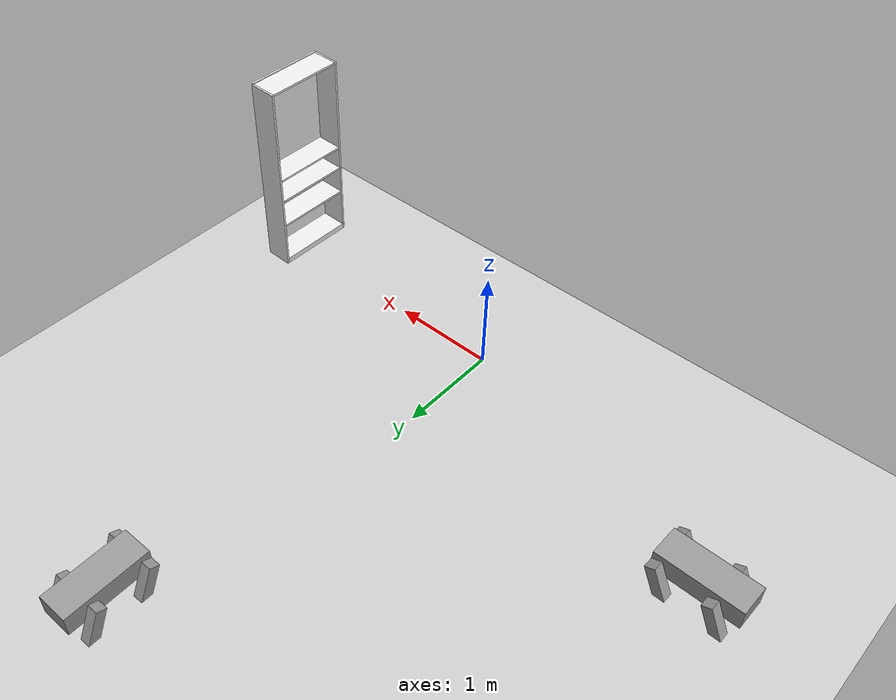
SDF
<sdf version="1.6">
 <world name="default">
  <model name="ground_plane">
   <static>1</static>
   <link name="link">
    <collision name="collision">
     <geometry><plane><normal>0 0 1</normal><size>100 100</size></plane></geometry>
     <surface>
      <contact><collide_bitmask>65535</collide_bitmask></contact>
      <friction><ode><mu>100</mu><mu2>50</mu2></ode></friction>
     </surface>
    </collision>
    <visual name="visual">
     <cast_shadows>0</cast_shadows>
     <geometry><plane><normal>0 0 1</normal><size>100 100</size></plane></geometry>
     <material>
      <script><uri>file://media/materials/scripts/gazebo.material</uri><name>Gazebo/Grey</name></script>
     </material>
    </visual>
   </link>
  </model>
  <model name="Dog">
   <link name="link_3">
    <pose>0 0 0.155724 0 -0 0</pose>
    <inertial>
     <mass>1</mass>
     <inertia>
      <ixx>0.166667</ixx>
      <ixy>0</ixy>
      <ixz>0</ixz>
      <iyy>0.166667</iyy>
      <iyz>0</iyz>
      <izz>0.166667</izz>
     </inertia>
    </inertial>
    <visual name="visual">
     <geometry><box><size>0.3 0.8 0.2</size></box></geometry>
     <material>
      <lighting>1</lighting>
      <script><uri>file://media/materials/scripts/gazebo.material</uri><name>Gazebo/Grey</name></script>
      <shader type="pixel"><normal_map>__default__</normal_map></shader>
      <ambient>0.3 0.3 0.3 1</ambient>
      <diffuse>0.7 0.7 0.7 1</diffuse>
      <specular>0.01 0.01 0.01 1</specular>
      <emissive>0 0 0 1</emissive>
     </material>
    </visual>
    <collision name="collision">
     <geometry><box><size>0.3 0.8 0.2</size></box></geometry>
     <surface>
      <friction>
       <ode><mu>1</mu><mu2>1</mu2><fdir1>0 0 0</fdir1><slip1>0</slip1><slip2>0</slip2></ode>
       <torsional>
        <coefficient>1</coefficient>
        <patch_radius>0</patch_radius>
        <surface_radius>0</surface_radius>
        <use_patch_radius>1</use_patch_radius>
        <ode><slip>0</slip></ode>
       </torsional>
      </friction>
      <bounce><restitution_coefficient>0</restitution_coefficient><threshold>1e+06</threshold></bounce>
      <contact>
       <collide_without_contact>0</collide_without_contact>
       <collide_without_contact_bitmask>1</collide_without_contact_bitmask>
       <collide_bitmask>1</collide_bitmask>
       <ode>
        <soft_cfm>0</soft_cfm>
        <soft_erp>0.2</soft_erp>
        <kp>1e+13</kp>
        <kd>1</kd>
        <max_vel>0.01</max_vel>
        <min_depth>0</min_depth>
       </ode>
       <bullet>
        <split_impulse>1</split_impulse>
        <split_impulse_penetration_threshold>-0.01</split_impulse_penetration_threshold>
        <soft_cfm>0</soft_cfm>
        <soft_erp>0.2</soft_erp>
        <kp>1e+13</kp>
        <kd>1</kd>
       </bullet>
      </contact>
     </surface>
    </collision>
   </link>
   <link name="link_4_clone">
    <pose>-0.2 0.250498 -0.038931 2 -0 0</pose>
    <inertial>
     <mass>1</mass>
     <inertia>
      <ixx>0.166667</ixx>
      <ixy>0</ixy>
      <ixz>0</ixz>
      <iyy>0.166667</iyy>
      <iyz>0</iyz>
      <izz>0.166667</izz>
     </inertia>
    </inertial>
    <visual name="visual">
     <geometry><box><size>0.1 0.5 0.1</size></box></geometry>
     <material>
      <lighting>1</lighting>
      <script><uri>file://media/materials/scripts/gazebo.material</uri><name>Gazebo/Grey</name></script>
      <shader type="pixel"><normal_map>__default__</normal_map></shader>
      <ambient>0.3 0.3 0.3 1</ambient>
      <diffuse>0.7 0.7 0.7 1</diffuse>
      <specular>0.01 0.01 0.01 1</specular>
      <emissive>0 0 0 1</emissive>
     </material>
    </visual>
    <collision name="collision">
     <geometry><box><size>0.1 0.5 0.1</size></box></geometry>
     <surface>
      <friction>
       <ode><mu>1</mu><mu2>1</mu2><fdir1>0 0 0</fdir1><slip1>0</slip1><slip2>0</slip2></ode>
       <torsional>
        <coefficient>1</coefficient>
        <patch_radius>0</patch_radius>
        <surface_radius>0</surface_radius>
        <use_patch_radius>1</use_patch_radius>
        <ode><slip>0</slip></ode>
       </torsional>
      </friction>
      <bounce><restitution_coefficient>0</restitution_coefficient><threshold>1e+06</threshold></bounce>
      <contact>
       <collide_without_contact>0</collide_without_contact>
       <collide_without_contact_bitmask>1</collide_without_contact_bitmask>
       <collide_bitmask>1</collide_bitmask>
       <ode>
        <soft_cfm>0</soft_cfm>
        <soft_erp>0.2</soft_erp>
        <kp>1e+13</kp>
        <kd>1</kd>
        <max_vel>0.01</max_vel>
        <min_depth>0</min_depth>
       </ode>
       <bullet>
        <split_impulse>1</split_impulse>
        <split_impulse_penetration_threshold>-0.01</split_impulse_penetration_threshold>
        <soft_cfm>0</soft_cfm>
        <soft_erp>0.2</soft_erp>
        <kp>1e+13</kp>
        <kd>1</kd>
       </bullet>
      </contact>
     </surface>
    </collision>
   </link>
   <link name="link_4_clone_0">
    <pose>0.2 -0.250498 -0.038931 2 -0 0</pose>
    <inertial>
     <mass>1</mass>
     <inertia>
      <ixx>0.166667</ixx>
      <ixy>0</ixy>
      <ixz>0</ixz>
      <iyy>0.166667</iyy>
      <iyz>0</iyz>
      <izz>0.166667</izz>
     </inertia>
    </inertial>
    <visual name="visual">
     <geometry><box><size>0.1 0.5 0.1</size></box></geometry>
     <material>
      <lighting>1</lighting>
      <script><uri>file://media/materials/scripts/gazebo.material</uri><name>Gazebo/Grey</name></script>
      <shader type="pixel"><normal_map>__default__</normal_map></shader>
      <ambient>0.3 0.3 0.3 1</ambient>
      <diffuse>0.7 0.7 0.7 1</diffuse>
      <specular>0.01 0.01 0.01 1</specular>
      <emissive>0 0 0 1</emissive>
     </material>
    </visual>
    <collision name="collision">
     <geometry><box><size>0.1 0.5 0.1</size></box></geometry>
     <surface>
      <friction>
       <ode><mu>1</mu><mu2>1</mu2><fdir1>0 0 0</fdir1><slip1>0</slip1><slip2>0</slip2></ode>
       <torsional>
        <coefficient>1</coefficient>
        <patch_radius>0</patch_radius>
        <surface_radius>0</surface_radius>
        <use_patch_radius>1</use_patch_radius>
        <ode><slip>0</slip></ode>
       </torsional>
      </friction>
      <bounce><restitution_coefficient>0</restitution_coefficient><threshold>1e+06</threshold></bounce>
      <contact>
       <collide_without_contact>0</collide_without_contact>
       <collide_without_contact_bitmask>1</collide_without_contact_bitmask>
       <collide_bitmask>1</collide_bitmask>
       <ode>
        <soft_cfm>0</soft_cfm>
        <soft_erp>0.2</soft_erp>
        <kp>1e+13</kp>
        <kd>1</kd>
        <max_vel>0.01</max_vel>
        <min_depth>0</min_depth>
       </ode>
       <bullet>
        <split_impulse>1</split_impulse>
        <split_impulse_penetration_threshold>-0.01</split_impulse_penetration_threshold>
        <soft_cfm>0</soft_cfm>
        <soft_erp>0.2</soft_erp>
        <kp>1e+13</kp>
        <kd>1</kd>
       </bullet>
      </contact>
     </surface>
    </collision>
   </link>
   <link name="link_4_clone_1">
    <pose>-0.2 -0.250498 -0.038931 2 -0 0</pose>
    <inertial>
     <mass>1</mass>
     <inertia>
      <ixx>0.166667</ixx>
      <ixy>0</ixy>
      <ixz>0</ixz>
      <iyy>0.166667</iyy>
      <iyz>0</iyz>
      <izz>0.166667</izz>
     </inertia>
    </inertial>
    <visual name="visual">
     <geometry><box><size>0.1 0.5 0.1</size></box></geometry>
     <material>
      <lighting>1</lighting>
      <script><uri>file://media/materials/scripts/gazebo.material</uri><name>Gazebo/Grey</name></script>
      <shader type="pixel"><normal_map>__default__</normal_map></shader>
      <ambient>0.3 0.3 0.3 1</ambient>
      <diffuse>0.7 0.7 0.7 1</diffuse>
      <specular>0.01 0.01 0.01 1</specular>
      <emissive>0 0 0 1</emissive>
     </material>
    </visual>
    <collision name="collision">
     <geometry><box><size>0.1 0.5 0.1</size></box></geometry>
     <surface>
      <friction>
       <ode><mu>1</mu><mu2>1</mu2><fdir1>0 0 0</fdir1><slip1>0</slip1><slip2>0</slip2></ode>
       <torsional>
        <coefficient>1</coefficient>
        <patch_radius>0</patch_radius>
        <surface_radius>0</surface_radius>
        <use_patch_radius>1</use_patch_radius>
        <ode><slip>0</slip></ode>
       </torsional>
      </friction>
      <bounce><restitution_coefficient>0</restitution_coefficient><threshold>1e+06</threshold></bounce>
      <contact>
       <collide_without_contact>0</collide_without_contact>
       <collide_without_contact_bitmask>1</collide_without_contact_bitmask>
       <collide_bitmask>1</collide_bitmask>
       <ode>
        <soft_cfm>0</soft_cfm>
        <soft_erp>0.2</soft_erp>
        <kp>1e+13</kp>
        <kd>1</kd>
        <max_vel>0.01</max_vel>
        <min_depth>0</min_depth>
       </ode>
       <bullet>
        <split_impulse>1</split_impulse>
        <split_impulse_penetration_threshold>-0.01</split_impulse_penetration_threshold>
        <soft_cfm>0</soft_cfm>
        <soft_erp>0.2</soft_erp>
        <kp>1e+13</kp>
        <kd>1</kd>
       </bullet>
      </contact>
     </surface>
    </collision>
   </link>
   <link name="link_4_clone_1_clone">
    <pose>0.2 0.250498 -0.038931 2 -0 0</pose>
    <inertial>
     <mass>1</mass>
     <inertia>
      <ixx>0.166667</ixx>
      <ixy>0</ixy>
      <ixz>0</ixz>
      <iyy>0.166667</iyy>
      <iyz>0</iyz>
      <izz>0.166667</izz>
     </inertia>
    </inertial>
    <visual name="visual">
     <geometry><box><size>0.1 0.5 0.1</size></box></geometry>
     <material>
      <lighting>1</lighting>
      <script><uri>file://media/materials/scripts/gazebo.material</uri><name>Gazebo/Grey</name></script>
      <shader type="pixel"><normal_map>__default__</normal_map></shader>
      <ambient>0.3 0.3 0.3 1</ambient>
      <diffuse>0.7 0.7 0.7 1</diffuse>
      <specular>0.01 0.01 0.01 1</specular>
      <emissive>0 0 0 1</emissive>
     </material>
    </visual>
    <collision name="collision">
     <geometry><box><size>0.1 0.5 0.1</size></box></geometry>
     <surface>
      <friction>
       <ode><mu>1</mu><mu2>1</mu2><fdir1>0 0 0</fdir1><slip1>0</slip1><slip2>0</slip2></ode>
       <torsional>
        <coefficient>1</coefficient>
        <patch_radius>0</patch_radius>
        <surface_radius>0</surface_radius>
        <use_patch_radius>1</use_patch_radius>
        <ode><slip>0</slip></ode>
       </torsional>
      </friction>
      <bounce><restitution_coefficient>0</restitution_coefficient><threshold>1e+06</threshold></bounce>
      <contact>
       <collide_without_contact>0</collide_without_contact>
       <collide_without_contact_bitmask>1</collide_without_contact_bitmask>
       <collide_bitmask>1</collide_bitmask>
       <ode>
        <soft_cfm>0</soft_cfm>
        <soft_erp>0.2</soft_erp>
        <kp>1e+13</kp>
        <kd>1</kd>
        <max_vel>0.01</max_vel>
        <min_depth>0</min_depth>
       </ode>
       <bullet>
        <split_impulse>1</split_impulse>
        <split_impulse_penetration_threshold>-0.01</split_impulse_penetration_threshold>
        <soft_cfm>0</soft_cfm>
        <soft_erp>0.2</soft_erp>
        <kp>1e+13</kp>
        <kd>1</kd>
       </bullet>
      </contact>
     </surface>
    </collision>
   </link>
   <joint name="link_3_JOINT_1" type="revolute">
    <parent>link_3</parent>
    <child>link_4_clone_0</child>
    <axis>
     <xyz>1 0 0</xyz>
     <use_parent_model_frame>0</use_parent_model_frame>
     <limit>
      <lower>-1.79769e+308</lower>
      <upper>1.79769e+308</upper>
      <effort>-1</effort>
      <velocity>-1</velocity>
     </limit>
     <dynamics>
      <spring_reference>0</spring_reference>
      <spring_stiffness>0</spring_stiffness>
      <damping>0</damping>
     </dynamics>
    </axis>
    <physics>
     <ode><limit><cfm>0</cfm><erp>0.2</erp></limit><suspension><cfm>0</cfm><erp>0.2</erp></suspension></ode>
    </physics>
   </joint>
   <joint name="link_3_JOINT_3" type="revolute">
    <parent>link_3</parent>
    <child>link_4_clone_1_clone</child>
    <axis>
     <xyz>1 0 0</xyz>
     <use_parent_model_frame>0</use_parent_model_frame>
     <limit>
      <lower>-1.79769e+308</lower>
      <upper>1.79769e+308</upper>
      <effort>-1</effort>
      <velocity>-1</velocity>
     </limit>
     <dynamics>
      <spring_reference>0</spring_reference>
      <spring_stiffness>0</spring_stiffness>
      <damping>0</damping>
     </dynamics>
    </axis>
    <physics>
     <ode><limit><cfm>0</cfm><erp>0.2</erp></limit><suspension><cfm>0</cfm><erp>0.2</erp></suspension></ode>
    </physics>
   </joint>
   <joint name="link_3_JOINT_4" type="revolute">
    <parent>link_3</parent>
    <child>link_4_clone</child>
    <axis>
     <xyz>1 0 0</xyz>
     <use_parent_model_frame>0</use_parent_model_frame>
     <limit>
      <lower>-1.79769e+308</lower>
      <upper>1.79769e+308</upper>
      <effort>-1</effort>
      <velocity>-1</velocity>
     </limit>
     <dynamics>
      <spring_reference>0</spring_reference>
      <spring_stiffness>0</spring_stiffness>
      <damping>0</damping>
     </dynamics>
    </axis>
    <physics>
     <ode><limit><cfm>0</cfm><erp>0.2</erp></limit><suspension><cfm>0</cfm><erp>0.2</erp></suspension></ode>
    </physics>
   </joint>
   <joint name="link_3_JOINT_5" type="revolute">
    <parent>link_3</parent>
    <child>link_4_clone_1</child>
    <axis>
     <xyz>1 0 0</xyz>
     <use_parent_model_frame>0</use_parent_model_frame>
     <limit>
      <lower>-1.79769e+308</lower>
      <upper>1.79769e+308</upper>
      <effort>-1</effort>
      <velocity>-1</velocity>
     </limit>
     <dynamics>
      <spring_reference>0</spring_reference>
      <spring_stiffness>0</spring_stiffness>
      <damping>0</damping>
     </dynamics>
    </axis>
    <physics>
     <ode><limit><cfm>0</cfm><erp>0.2</erp></limit><suspension><cfm>0</cfm><erp>0.2</erp></suspension></ode>
    </physics>
   </joint>
   <static>0</static>
   <pose>-2.86547 0.833554 0.088927 0 -0 1.56047</pose>
  </model>
  <model name="Dog_0">
   <link name="link_3">
    <pose>0 0 0.155724 0 -0 0</pose>
    <inertial>
     <mass>1</mass>
     <inertia>
      <ixx>0.166667</ixx>
      <ixy>0</ixy>
      <ixz>0</ixz>
      <iyy>0.166667</iyy>
      <iyz>0</iyz>
      <izz>0.166667</izz>
     </inertia>
    </inertial>
    <visual name="visual">
     <geometry><box><size>0.3 0.8 0.2</size></box></geometry>
     <material>
      <lighting>1</lighting>
      <script><uri>file://media/materials/scripts/gazebo.material</uri><name>Gazebo/Grey</name></script>
      <shader type="pixel"><normal_map>__default__</normal_map></shader>
      <ambient>0.3 0.3 0.3 1</ambient>
      <diffuse>0.7 0.7 0.7 1</diffuse>
      <specular>0.01 0.01 0.01 1</specular>
      <emissive>0 0 0 1</emissive>
     </material>
    </visual>
    <collision name="collision">
     <geometry><box><size>0.3 0.8 0.2</size></box></geometry>
     <surface>
      <friction>
       <ode><mu>1</mu><mu2>1</mu2><fdir1>0 0 0</fdir1><slip1>0</slip1><slip2>0</slip2></ode>
       <torsional>
        <coefficient>1</coefficient>
        <patch_radius>0</patch_radius>
        <surface_radius>0</surface_radius>
        <use_patch_radius>1</use_patch_radius>
        <ode><slip>0</slip></ode>
       </torsional>
      </friction>
      <bounce><restitution_coefficient>0</restitution_coefficient><threshold>1e+06</threshold></bounce>
      <contact>
       <collide_without_contact>0</collide_without_contact>
       <collide_without_contact_bitmask>1</collide_without_contact_bitmask>
       <collide_bitmask>1</collide_bitmask>
       <ode>
        <soft_cfm>0</soft_cfm>
        <soft_erp>0.2</soft_erp>
        <kp>1e+13</kp>
        <kd>1</kd>
        <max_vel>0.01</max_vel>
        <min_depth>0</min_depth>
       </ode>
       <bullet>
        <split_impulse>1</split_impulse>
        <split_impulse_penetration_threshold>-0.01</split_impulse_penetration_threshold>
        <soft_cfm>0</soft_cfm>
        <soft_erp>0.2</soft_erp>
        <kp>1e+13</kp>
        <kd>1</kd>
       </bullet>
      </contact>
     </surface>
    </collision>
   </link>
   <link name="link_4_clone">
    <pose>-0.2 0.250498 -0.038931 2 -0 0</pose>
    <inertial>
     <mass>1</mass>
     <inertia>
      <ixx>0.166667</ixx>
      <ixy>0</ixy>
      <ixz>0</ixz>
      <iyy>0.166667</iyy>
      <iyz>0</iyz>
      <izz>0.166667</izz>
     </inertia>
    </inertial>
    <visual name="visual">
     <geometry><box><size>0.1 0.5 0.1</size></box></geometry>
     <material>
      <lighting>1</lighting>
      <script><uri>file://media/materials/scripts/gazebo.material</uri><name>Gazebo/Grey</name></script>
      <shader type="pixel"><normal_map>__default__</normal_map></shader>
      <ambient>0.3 0.3 0.3 1</ambient>
      <diffuse>0.7 0.7 0.7 1</diffuse>
      <specular>0.01 0.01 0.01 1</specular>
      <emissive>0 0 0 1</emissive>
     </material>
    </visual>
    <collision name="collision">
     <geometry><box><size>0.1 0.5 0.1</size></box></geometry>
     <surface>
      <friction>
       <ode><mu>1</mu><mu2>1</mu2><fdir1>0 0 0</fdir1><slip1>0</slip1><slip2>0</slip2></ode>
       <torsional>
        <coefficient>1</coefficient>
        <patch_radius>0</patch_radius>
        <surface_radius>0</surface_radius>
        <use_patch_radius>1</use_patch_radius>
        <ode><slip>0</slip></ode>
       </torsional>
      </friction>
      <bounce><restitution_coefficient>0</restitution_coefficient><threshold>1e+06</threshold></bounce>
      <contact>
       <collide_without_contact>0</collide_without_contact>
       <collide_without_contact_bitmask>1</collide_without_contact_bitmask>
       <collide_bitmask>1</collide_bitmask>
       <ode>
        <soft_cfm>0</soft_cfm>
        <soft_erp>0.2</soft_erp>
        <kp>1e+13</kp>
        <kd>1</kd>
        <max_vel>0.01</max_vel>
        <min_depth>0</min_depth>
       </ode>
       <bullet>
        <split_impulse>1</split_impulse>
        <split_impulse_penetration_threshold>-0.01</split_impulse_penetration_threshold>
        <soft_cfm>0</soft_cfm>
        <soft_erp>0.2</soft_erp>
        <kp>1e+13</kp>
        <kd>1</kd>
       </bullet>
      </contact>
     </surface>
    </collision>
   </link>
   <link name="link_4_clone_0">
    <pose>0.2 -0.250498 -0.038931 2 -0 0</pose>
    <inertial>
     <mass>1</mass>
     <inertia>
      <ixx>0.166667</ixx>
      <ixy>0</ixy>
      <ixz>0</ixz>
      <iyy>0.166667</iyy>
      <iyz>0</iyz>
      <izz>0.166667</izz>
     </inertia>
    </inertial>
    <visual name="visual">
     <geometry><box><size>0.1 0.5 0.1</size></box></geometry>
     <material>
      <lighting>1</lighting>
      <script><uri>file://media/materials/scripts/gazebo.material</uri><name>Gazebo/Grey</name></script>
      <shader type="pixel"><normal_map>__default__</normal_map></shader>
      <ambient>0.3 0.3 0.3 1</ambient>
      <diffuse>0.7 0.7 0.7 1</diffuse>
      <specular>0.01 0.01 0.01 1</specular>
      <emissive>0 0 0 1</emissive>
     </material>
    </visual>
    <collision name="collision">
     <geometry><box><size>0.1 0.5 0.1</size></box></geometry>
     <surface>
      <friction>
       <ode><mu>1</mu><mu2>1</mu2><fdir1>0 0 0</fdir1><slip1>0</slip1><slip2>0</slip2></ode>
       <torsional>
        <coefficient>1</coefficient>
        <patch_radius>0</patch_radius>
        <surface_radius>0</surface_radius>
        <use_patch_radius>1</use_patch_radius>
        <ode><slip>0</slip></ode>
       </torsional>
      </friction>
      <bounce><restitution_coefficient>0</restitution_coefficient><threshold>1e+06</threshold></bounce>
      <contact>
       <collide_without_contact>0</collide_without_contact>
       <collide_without_contact_bitmask>1</collide_without_contact_bitmask>
       <collide_bitmask>1</collide_bitmask>
       <ode>
        <soft_cfm>0</soft_cfm>
        <soft_erp>0.2</soft_erp>
        <kp>1e+13</kp>
        <kd>1</kd>
        <max_vel>0.01</max_vel>
        <min_depth>0</min_depth>
       </ode>
       <bullet>
        <split_impulse>1</split_impulse>
        <split_impulse_penetration_threshold>-0.01</split_impulse_penetration_threshold>
        <soft_cfm>0</soft_cfm>
        <soft_erp>0.2</soft_erp>
        <kp>1e+13</kp>
        <kd>1</kd>
       </bullet>
      </contact>
     </surface>
    </collision>
   </link>
   <link name="link_4_clone_1">
    <pose>-0.2 -0.250498 -0.038931 2 -0 0</pose>
    <inertial>
     <mass>1</mass>
     <inertia>
      <ixx>0.166667</ixx>
      <ixy>0</ixy>
      <ixz>0</ixz>
      <iyy>0.166667</iyy>
      <iyz>0</iyz>
      <izz>0.166667</izz>
     </inertia>
    </inertial>
    <visual name="visual">
     <geometry><box><size>0.1 0.5 0.1</size></box></geometry>
     <material>
      <lighting>1</lighting>
      <script><uri>file://media/materials/scripts/gazebo.material</uri><name>Gazebo/Grey</name></script>
      <shader type="pixel"><normal_map>__default__</normal_map></shader>
      <ambient>0.3 0.3 0.3 1</ambient>
      <diffuse>0.7 0.7 0.7 1</diffuse>
      <specular>0.01 0.01 0.01 1</specular>
      <emissive>0 0 0 1</emissive>
     </material>
    </visual>
    <collision name="collision">
     <geometry><box><size>0.1 0.5 0.1</size></box></geometry>
     <surface>
      <friction>
       <ode><mu>1</mu><mu2>1</mu2><fdir1>0 0 0</fdir1><slip1>0</slip1><slip2>0</slip2></ode>
       <torsional>
        <coefficient>1</coefficient>
        <patch_radius>0</patch_radius>
        <surface_radius>0</surface_radius>
        <use_patch_radius>1</use_patch_radius>
        <ode><slip>0</slip></ode>
       </torsional>
      </friction>
      <bounce><restitution_coefficient>0</restitution_coefficient><threshold>1e+06</threshold></bounce>
      <contact>
       <collide_without_contact>0</collide_without_contact>
       <collide_without_contact_bitmask>1</collide_without_contact_bitmask>
       <collide_bitmask>1</collide_bitmask>
       <ode>
        <soft_cfm>0</soft_cfm>
        <soft_erp>0.2</soft_erp>
        <kp>1e+13</kp>
        <kd>1</kd>
        <max_vel>0.01</max_vel>
        <min_depth>0</min_depth>
       </ode>
       <bullet>
        <split_impulse>1</split_impulse>
        <split_impulse_penetration_threshold>-0.01</split_impulse_penetration_threshold>
        <soft_cfm>0</soft_cfm>
        <soft_erp>0.2</soft_erp>
        <kp>1e+13</kp>
        <kd>1</kd>
       </bullet>
      </contact>
     </surface>
    </collision>
   </link>
   <link name="link_4_clone_1_clone">
    <pose>0.2 0.250498 -0.038931 2 -0 0</pose>
    <inertial>
     <mass>1</mass>
     <inertia>
      <ixx>0.166667</ixx>
      <ixy>0</ixy>
      <ixz>0</ixz>
      <iyy>0.166667</iyy>
      <iyz>0</iyz>
      <izz>0.166667</izz>
     </inertia>
    </inertial>
    <visual name="visual">
     <geometry><box><size>0.1 0.5 0.1</size></box></geometry>
     <material>
      <lighting>1</lighting>
      <script><uri>file://media/materials/scripts/gazebo.material</uri><name>Gazebo/Grey</name></script>
      <shader type="pixel"><normal_map>__default__</normal_map></shader>
      <ambient>0.3 0.3 0.3 1</ambient>
      <diffuse>0.7 0.7 0.7 1</diffuse>
      <specular>0.01 0.01 0.01 1</specular>
      <emissive>0 0 0 1</emissive>
     </material>
    </visual>
    <collision name="collision">
     <geometry><box><size>0.1 0.5 0.1</size></box></geometry>
     <surface>
      <friction>
       <ode><mu>1</mu><mu2>1</mu2><fdir1>0 0 0</fdir1><slip1>0</slip1><slip2>0</slip2></ode>
       <torsional>
        <coefficient>1</coefficient>
        <patch_radius>0</patch_radius>
        <surface_radius>0</surface_radius>
        <use_patch_radius>1</use_patch_radius>
        <ode><slip>0</slip></ode>
       </torsional>
      </friction>
      <bounce><restitution_coefficient>0</restitution_coefficient><threshold>1e+06</threshold></bounce>
      <contact>
       <collide_without_contact>0</collide_without_contact>
       <collide_without_contact_bitmask>1</collide_without_contact_bitmask>
       <collide_bitmask>1</collide_bitmask>
       <ode>
        <soft_cfm>0</soft_cfm>
        <soft_erp>0.2</soft_erp>
        <kp>1e+13</kp>
        <kd>1</kd>
        <max_vel>0.01</max_vel>
        <min_depth>0</min_depth>
       </ode>
       <bullet>
        <split_impulse>1</split_impulse>
        <split_impulse_penetration_threshold>-0.01</split_impulse_penetration_threshold>
        <soft_cfm>0</soft_cfm>
        <soft_erp>0.2</soft_erp>
        <kp>1e+13</kp>
        <kd>1</kd>
       </bullet>
      </contact>
     </surface>
    </collision>
   </link>
   <joint name="link_3_JOINT_1" type="revolute">
    <parent>link_3</parent>
    <child>link_4_clone_0</child>
    <axis>
     <xyz>1 0 0</xyz>
     <use_parent_model_frame>0</use_parent_model_frame>
     <limit>
      <lower>-1.79769e+308</lower>
      <upper>1.79769e+308</upper>
      <effort>-1</effort>
      <velocity>-1</velocity>
     </limit>
     <dynamics>
      <spring_reference>0</spring_reference>
      <spring_stiffness>0</spring_stiffness>
      <damping>0</damping>
     </dynamics>
    </axis>
    <physics>
     <ode><limit><cfm>0</cfm><erp>0.2</erp></limit><suspension><cfm>0</cfm><erp>0.2</erp></suspension></ode>
    </physics>
   </joint>
   <joint name="link_3_JOINT_3" type="revolute">
    <parent>link_3</parent>
    <child>link_4_clone_1_clone</child>
    <axis>
     <xyz>1 0 0</xyz>
     <use_parent_model_frame>0</use_parent_model_frame>
     <limit>
      <lower>-1.79769e+308</lower>
      <upper>1.79769e+308</upper>
      <effort>-1</effort>
      <velocity>-1</velocity>
     </limit>
     <dynamics>
      <spring_reference>0</spring_reference>
      <spring_stiffness>0</spring_stiffness>
      <damping>0</damping>
     </dynamics>
    </axis>
    <physics>
     <ode><limit><cfm>0</cfm><erp>0.2</erp></limit><suspension><cfm>0</cfm><erp>0.2</erp></suspension></ode>
    </physics>
   </joint>
   <joint name="link_3_JOINT_4" type="revolute">
    <parent>link_3</parent>
    <child>link_4_clone</child>
    <axis>
     <xyz>1 0 0</xyz>
     <use_parent_model_frame>0</use_parent_model_frame>
     <limit>
      <lower>-1.79769e+308</lower>
      <upper>1.79769e+308</upper>
      <effort>-1</effort>
      <velocity>-1</velocity>
     </limit>
     <dynamics>
      <spring_reference>0</spring_reference>
      <spring_stiffness>0</spring_stiffness>
      <damping>0</damping>
     </dynamics>
    </axis>
    <physics>
     <ode><limit><cfm>0</cfm><erp>0.2</erp></limit><suspension><cfm>0</cfm><erp>0.2</erp></suspension></ode>
    </physics>
   </joint>
   <joint name="link_3_JOINT_5" type="revolute">
    <parent>link_3</parent>
    <child>link_4_clone_1</child>
    <axis>
     <xyz>1 0 0</xyz>
     <use_parent_model_frame>0</use_parent_model_frame>
     <limit>
      <lower>-1.79769e+308</lower>
      <upper>1.79769e+308</upper>
      <effort>-1</effort>
      <velocity>-1</velocity>
     </limit>
     <dynamics>
      <spring_reference>0</spring_reference>
      <spring_stiffness>0</spring_stiffness>
      <damping>0</damping>
     </dynamics>
    </axis>
    <physics>
     <ode><limit><cfm>0</cfm><erp>0.2</erp></limit><suspension><cfm>0</cfm><erp>0.2</erp></suspension></ode>
    </physics>
   </joint>
   <static>0</static>
   <pose>0.551883 3.9784 0.088931 0 -0 0.013639</pose>
  </model>
  <model name="wrc_bookshelf">
   <static>1</static>
   <link name="link">
    <inertial><mass>1</mass></inertial>
    <collision name="back">
     <pose>0 0.005 1.02 0 -0 0</pose>
     <geometry><box><size>0.8 0.02 2.02</size></box></geometry>
    </collision>
    <visual name="back_v">
     <pose>0 0.14 1.02 0 -0 0</pose>
     <geometry><box><size>0.8 0.02 2.02</size></box></geometry>
     <material>
      <script><uri>file://media/materials/scripts/gazebo.material</uri><name>Gazebo/White</name></script>
     </material>
    </visual>
    <collision name="left_side">
     <pose>0.4 0 1.01 0 -0 0</pose>
     <geometry><box><size>0.02 0.28 2.02</size></box></geometry>
    </collision>
    <visual name="left_side_v">
     <pose>0.4 0 1.01 0 -0 0</pose>
     <geometry><box><size>0.02 0.28 2.02</size></box></geometry>
     <material>
      <script><uri>file://media/materials/scripts/gazebo.material</uri><name>Gazebo/White</name></script>
     </material>
    </visual>
    <collision name="right_side">
     <pose>-0.4 0 1.01 0 -0 0</pose>
     <geometry><box><size>0.02 0.28 2.02</size></box></geometry>
    </collision>
    <visual name="right_side_v">
     <pose>-0.4 0 1.01 0 -0 0</pose>
     <geometry><box><size>0.02 0.28 2.02</size></box></geometry>
     <material>
      <script><uri>file://media/materials/scripts/gazebo.material</uri><name>Gazebo/White</name></script>
     </material>
    </visual>
    <collision name="bottom">
     <pose>0 0 0.03 0 -0 0</pose>
     <geometry><box><size>0.8 0.28 0.06</size></box></geometry>
    </collision>
    <visual name="bottom_v">
     <pose>0 0 0.03 0 -0 0</pose>
     <geometry><box><size>0.8 0.28 0.06</size></box></geometry>
     <material>
      <script><uri>file://media/materials/scripts/gazebo.material</uri><name>Gazebo/White</name></script>
     </material>
    </visual>
    <collision name="top">
     <pose>0 0 2.01 0 -0 0</pose>
     <geometry><box><size>0.8 0.28 0.02</size></box></geometry>
    </collision>
    <visual name="top_v">
     <pose>0 0 2.01 0 -0 0</pose>
     <geometry><box><size>0.8 0.28 0.02</size></box></geometry>
     <material>
      <script><uri>file://media/materials/scripts/gazebo.material</uri><name>Gazebo/White</name></script>
     </material>
    </visual>
    <collision name="slit1">
     <pose>0 0 0.49 0 -0 0</pose>
     <geometry><box><size>0.8 0.28 0.02</size></box></geometry>
    </collision>
    <visual name="slit1_v">
     <pose>0 0 0.49 0 -0 0</pose>
     <geometry><box><size>0.8 0.28 0.02</size></box></geometry>
     <material>
      <script><uri>file://media/materials/scripts/gazebo.material</uri><name>Gazebo/White</name></script>
     </material>
    </visual>
    <collision name="slit2">
     <pose>0 0 0.79 0 -0 0</pose>
     <geometry><box><size>0.8 0.28 0.02</size></box></geometry>
    </collision>
    <visual name="slit2_v">
     <pose>0 0 0.79 0 -0 0</pose>
     <geometry><box><size>0.8 0.28 0.02</size></box></geometry>
     <material>
      <script><uri>file://media/materials/scripts/gazebo.material</uri><name>Gazebo/White</name></script>
     </material>
    </visual>
    <collision name="slit3">
     <pose>0 0 1.04 0 -0 0</pose>
     <geometry><box><size>0.8 0.28 0.02</size></box></geometry>
    </collision>
    <visual name="slit3_v">
     <pose>0 0 1.04 0 -0 0</pose>
     <geometry><box><size>0.8 0.28 0.02</size></box></geometry>
     <material>
      <script><uri>file://media/materials/scripts/gazebo.material</uri><name>Gazebo/White</name></script>
     </material>
    </visual>
   </link>
   <pose>2.51424 -0.13104 0 0 0 -1.58492</pose>
  </model>
 </world>
</sdf>
